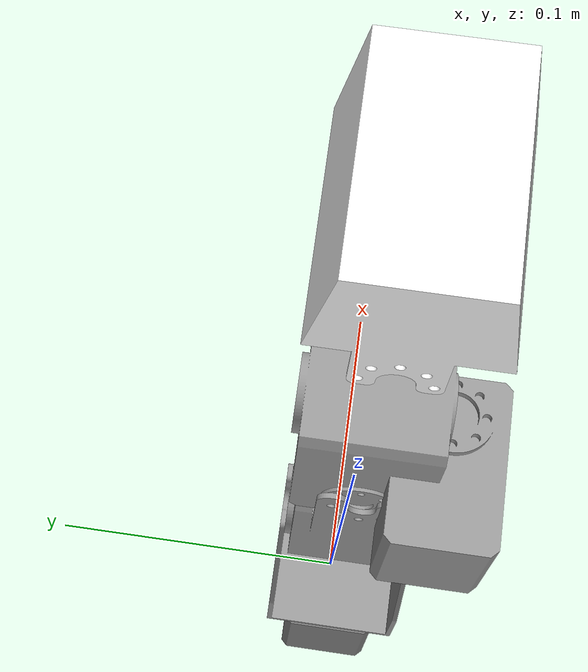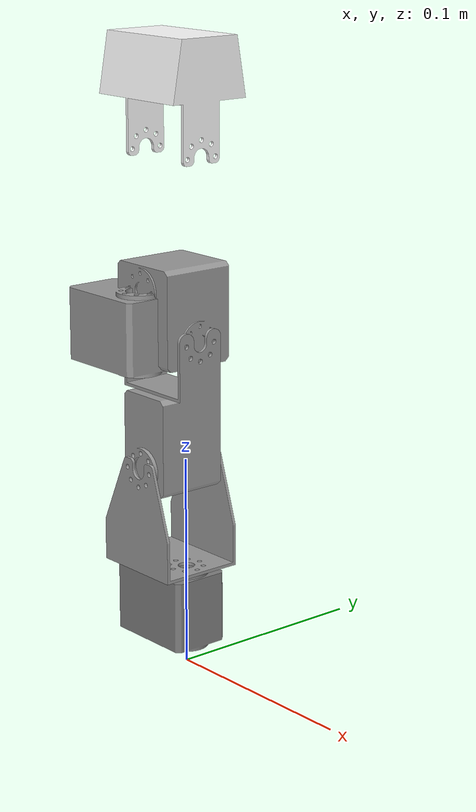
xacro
<?xml version="1.0"?>
<robot name="kyun" xmlns:xacro="http://www.ros.org/wiki/xacro">

<material name="gray">
  <color rgba="0.5 0.5 0.5 2.5"/>
</material>
<material name="white">
  <color rgba="1.0 1.0 1.0 1"/>
</material>

<link name="world"/>
<joint name="world_to_base" type="fixed">
  <origin xyz="0 0 0.0465"/>
  <parent link="world"/>
  <child link="base_link"/>
</joint>

<link name="base_link">
  <visual>
    <geometry>
      <mesh filename="package://kyun_real_description_sdk/mesh/servo01.stl" scale="0.001 0.001 0.001"/>
      <origin xyz="0 0 0.0465"/>
    </geometry>
    <material name="gray"/>
  </visual>
  <collision>
    <geometry>
      <mesh filename="package://kyun_real_description_sdk/mesh/servo01.stl" scale="0.001 0.001 0.001"/>
      <origin xyz="0 0 0.0465"/>
    </geometry>
  </collision>
  <inertial>
    <mass value="0.0572"/>
    <inertia ixx="0.00093819916" ixy="0" ixz="0" iyy="0.00158169916" iyz="0" izz="0.001417845"/>
  </inertial>
</link>

<joint name="base_to_2nd" type="revolute">
  <parent link="base_link"/>
  <child link="2nd_link"/>
  <origin xyz="0 0 0" rpy="0 0 0"/>
  <axis xyz="0 0 1"/>
  <dynamics damping="0.7"/>
  <limit lower="-1.5" upper="1.5" effort="0.5" velocity="6.0"/>
</joint>

<transmission name="base_trans">
    <type>transmission_interface/SimpleTransmission</type>
    <joint name="base_to_2nd">
      <hardwareInterface>hardware_interface/EffortJointInterface</hardwareInterface>
    </joint>
    <actuator name="base_motor">
      <hardwareInterface>hardware_interface/EffortJointInterface</hardwareInterface>
      <mechanismReduction>1</mechanismReduction>
    </actuator>
</transmission>

<link name="2nd_link">
  <visual>
    <geometry>
      <mesh filename="package://kyun_real_description_sdk/mesh/frame12.stl" scale="0.001 0.001 0.001"/>
      <origin xyz="0 0 0"/>
    </geometry>
    <material name="grey"/>
  </visual>
  <collision>
    <geometry>
      <mesh filename="package://kyun_real_description_sdk/mesh/frame12.stl" scale="0.001 0.001 0.001"/>
      <origin xyz="0 0 0"/>
    </geometry>
  </collision>
  <inertial>
    <mass value="0.0228"/>
    <inertia ixx="0.0012587" ixy="0" ixz="0" iyy="0.0009052" iyz="0" izz="0.0010677"/>
  </inertial>
</link>

<joint name="2nd_to_3rd" type="revolute">
  <parent link="2nd_link"/>
  <child link="3rd_link"/>
  <origin xyz="-0.00963 0.019 0.05" rpy="0 0 0"/>
  <axis xyz="0 1 0"/>
  <dynamics damping="0.7"/>
  <limit lower="-1.5" upper="1.5" effort="0.5" velocity="6.0"/>
</joint>

<transmission name="2nd_trans">
    <type>transmission_interface/SimpleTransmission</type>
    <joint name="2nd_to_3rd">
      <hardwareInterface>hardware_interface/EffortJointInterface</hardwareInterface>
    </joint>
    <actuator name="2nd_motor">
      <hardwareInterface>hardware_interface/EffortJointInterface</hardwareInterface>
      <mechanismReduction>1</mechanismReduction>
    </actuator>
</transmission>

<link name="3rd_link">
  <visual>
    <geometry>
      <mesh filename="package://kyun_real_description_sdk/mesh/servo02.stl" scale="0.001 0.001 0.001"/>
      <origin xyz="0 0 0"/>
    </geometry>
    <material name="grey"/>
  </visual>
  <collision>
    <geometry>
      <mesh filename="package://kyun_real_description_sdk/mesh/servo02.stl" scale="0.001 0.001 0.001"/>
      <origin xyz="0 0 0"/>
    </geometry>
  </collision>
  <inertial>
    <mass value="0.0638"/>
    <inertia ixx="0.0021267" ixy="0" ixz="0" iyy="0.0020277" iyz="0" izz="0.0011317"/>
  </inertial>
</link>

<joint name="3rd_to_4th" type="revolute">
  <parent link="3rd_link"/>
  <child link="4th_link"/>
  <origin xyz="0.019 -0.018 0.06075" rpy="0 0 0"/>
  <axis xyz="1 0 0"/>
  <dynamics damping="0.7"/>
  <limit lower="-1.5" upper="1.5" effort="0.5" velocity="6.0"/>
</joint>

<transmission name="3rd_trans">
    <type>transmission_interface/SimpleTransmission</type>
    <joint name="3rd_to_4th">
      <hardwareInterface>hardware_interface/EffortJointInterface</hardwareInterface>
    </joint>
    <actuator name="3rd_motor">
      <hardwareInterface>hardware_interface/EffortJointInterface</hardwareInterface>
      <mechanismReduction>1</mechanismReduction>
    </actuator>
</transmission>

<link name="4th_link">
  <visual>
    <geometry>
      <mesh filename="package://kyun_real_description_sdk/mesh/servo03.stl" scale="0.001 0.001 0.001"/>
    </geometry>
    <material name="grey"/>
  </visual>
  <collision>
    <geometry>
      <mesh filename="package://kyun_real_description_sdk/mesh/servo03.stl" scale="0.001 0.001 0.001"/>
    </geometry>
  </collision>
  <inertial>
    <mass value="0.099806"/>
    <inertia ixx="0.0028791" ixy="0" ixz="0" iyy="0.0028648" iyz="0" izz="0.0021805"/>
  </inertial>
</link>

<joint name="4th_to_5th" type="revolute">
  <parent link="4th_link"/>
  <child link="5th_link"/>
  <origin xyz="-0.019 -0.02 0.024" rpy="0 0 0"/>
  <axis xyz="0 1 0"/>
  <dynamics damping="0.7"/>
  <limit lower="-1.5" upper="1.5" effort="0.5" velocity="6.0"/>
</joint>

<transmission name="4th_trans">
    <type>transmission_interface/SimpleTransmission</type>
    <joint name="4th_to_5th">
      <hardwareInterface>hardware_interface/EffortJointInterface</hardwareInterface>
    </joint>
    <actuator name="4th_motor">
      <hardwareInterface>hardware_interface/EffortJointInterface</hardwareInterface>
      <mechanismReduction>1</mechanismReduction>
    </actuator>
</transmission>

<link name="5th_link">
  <visual>
    <geometry>
      <mesh filename="package://kyun_real_description_sdk/mesh/servo04.stl" scale="0.001 0.001 0.001"/>
    </geometry>
    <material name="grey"/>
  </visual>
  <collision>
    <geometry>
      <mesh filename="package://kyun_real_description_sdk/mesh/servo04.stl" scale="0.001 0.001 0.001"/>
    </geometry>
  </collision>
  <inertial>
    <mass value="0.063759"/>
    <inertia ixx="0.0020277" ixy="0" ixz="0" iyy="0.0021267" iyz="0" izz="0.0011317"/>
  </inertial>
</link>

<joint name="5th_to_6th" type="revolute">
  <parent link="5th_link"/>
  <child link="6th_link"/>
  <origin xyz="0.0205 0.02 0.06075" rpy="0 0 0"/>
  <axis xyz="1 0 0"/>
  <dynamics damping="0.7"/>
  <limit lower="-1.5" upper="1.5" effort="0.5" velocity="6.0"/>
</joint>

<transmission name="5th_trans">
    <type>transmission_interface/SimpleTransmission</type>
    <joint name="5th_to_6th">
      <hardwareInterface>hardware_interface/EffortJointInterface</hardwareInterface>
    </joint>
    <actuator name="5th_motor">
      <hardwareInterface>hardware_interface/EffortJointInterface</hardwareInterface>
       <mechanismReduction>1</mechanismReduction>
    </actuator>
</transmission>

<link name="6th_link">
  <visual>
    <geometry>
      <mesh filename="package://kyun_real_description_sdk/mesh/frame13.stl" scale="0.001 0.001 0.001"/>
    </geometry>
    <material name="white"/>
  </visual>
  <collision>
    <geometry>
      <mesh filename="package://kyun_real_description_sdk/mesh/frame13.stl" scale="0.001 0.001 0.001"/>
    </geometry>
  </collision>
  <inertial>
    <mass value="0.059571"/>
    <inertia ixx="0.0011416" ixy="0" ixz="0" iyy="0.0011103" iyz="0" izz="0.0020421"/>
  </inertial>
</link>

</robot>
